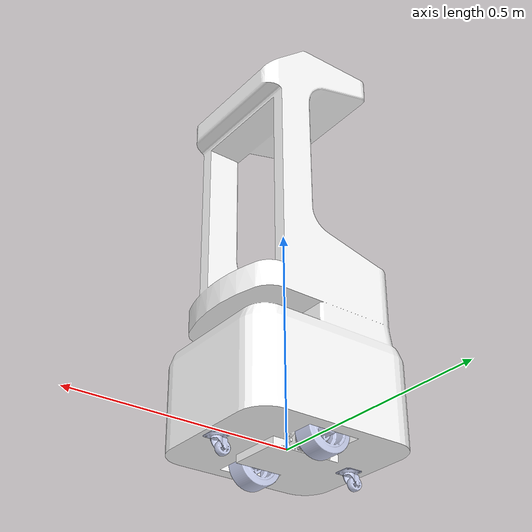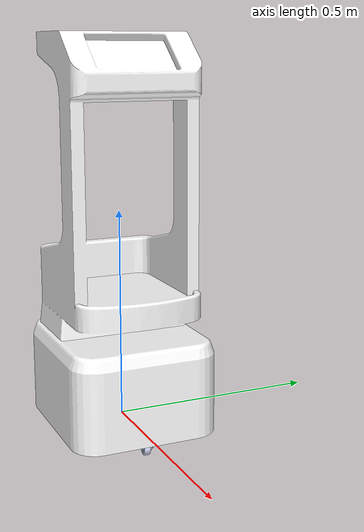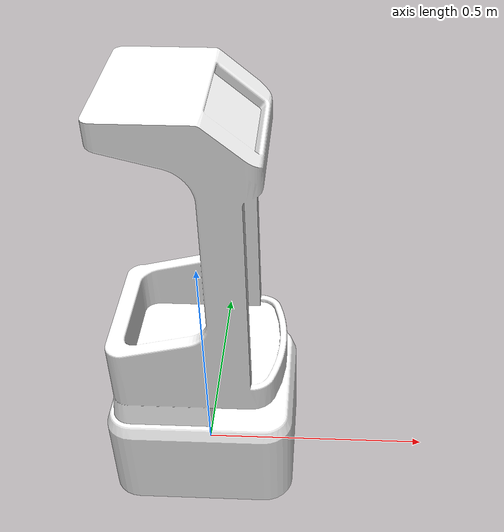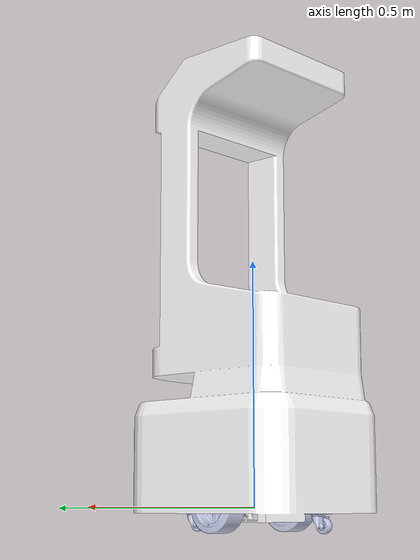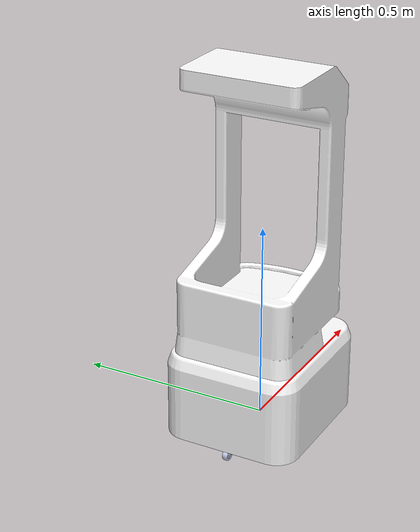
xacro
<?xml version="1.0"?>
<robot name="robot" xmlns:xacro="http://www.ros.org/wiki/xacro">

  <link name="base_link">
    <inertial> <origin xyz="-0.00418261227896211 3.71625062053904E-05 0.371051317313453" rpy="0 0 0" />
      <mass value="31.4198392074961" />
      <inertia ixx="0.534738153716668" ixy="-7.93744571895288E-05" ixz="-0.0005502660745598"  iyy="0.551360325989251" iyz="0.000120146109394871" izz="0.689386206408512" />
    </inertial>
    <visual>
      <origin xyz="0 0 0" rpy="0 0 0" />
      <geometry>
        <mesh filename="file:///home/huuhoa/hospital_robot/src/hospital_package/robot_URDF_hospital/meshes/base_link.STL" />
      </geometry>
      <material
        name="">
        <color rgba="1 1 1 1" />
      </material>
    </visual>
    <collision>
      <origin  xyz="0 0 0" rpy="0 0 0" />
      <geometry>
        <mesh filename="file:///home/huuhoa/hospital_robot/src/hospital_package/robot_URDF_hospital/meshes/base_link.STL" />
      </geometry>
    </collision>
  </link>

  <joint name="base_footprint_joint" type="fixed">
        <parent link="base_link"/>
        <child link="base_footprint"/>
        <origin xyz="0 0 0" rpy="0 0 0"/>
  </joint>

  <link name="base_footprint"></link>

  <link name="wheel_left_link">
    <inertial>
      <origin xyz="-6.05660623209658E-07 0.0309999309948489 -5.78530730085958E-07" rpy="0 0 0" />
      <mass value="0.248448764511887" />
      <inertia ixx="0.000243103249882426"  ixy="2.77650542305426E-10" ixz="2.46488621954328E-09" iyy="0.000389428879628454"  iyz="2.61001466108513E-10" izz="0.000243102824420112" />
    </inertial>
    <visual>
      <origin  xyz="0 0 0"  rpy="0 0 0" />
      <geometry>
        <mesh  filename="file:///home/huuhoa/hospital_robot/src/hospital_package/robot_URDF_hospital/meshes/wheel_left_link.STL" />
      </geometry>
      <material name="">
        <color  rgba="0.792156862745098 0.819607843137255 0.933333333333333 1" />
      </material>
    </visual>
    <collision>
      <origin xyz="0 0 0" rpy="0 0 0" />
      <geometry>
        <mesh  filename="file:///home/huuhoa/hospital_robot/src/hospital_package/robot_URDF_hospital/meshes/wheel_left_link.STL" />
      </geometry>
    </collision>
  </link>

  <joint name="wheel_left_joint" type="fixed">
    <origin xyz="-0.001 0.077499 0.002" rpy="0 0 0" />
    <parent  link="base_link" />
    <child link="wheel_left_link" />
    <axis xyz="0 1 0" />
    <limit
      lower="0"
      upper="0"
      effort="0"
      velocity="0" />
  </joint>

  <link name="wheel_right_link">
    <inertial>
      <origin  xyz="-6.0566062326517E-07 -0.0310000690051511 -5.78530730085958E-07"  rpy="0 0 0" />
      <mass value="0.248448764511887" />
      <inertia ixx="0.000243103249882427" ixy="2.77650542235766E-10" ixz="2.46488621953934E-09" iyy="0.000389428879628454"  iyz="2.61001466170067E-10" izz="0.000243102824420112" />
    </inertial>
    <visual>
      <origin xyz="0 0 0" rpy="0 0 0" />
      <geometry>
        <mesh filename="file:///home/huuhoa/hospital_robot/src/hospital_package/robot_URDF_hospital/meshes/wheel_right_link.STL" />
      </geometry>
      <material name="">
        <color rgba="0.792156862745098 0.819607843137255 0.933333333333333 1" />
      </material>
    </visual>
    <collision>
      <origin xyz="0 0 0" rpy="0 0 0" />
      <geometry>
        <mesh  filename="file:///home/huuhoa/hospital_robot/src/hospital_package/robot_URDF_hospital/meshes/wheel_right_link.STL" />
      </geometry>
    </collision>
  </link>

  <joint name="wheel_right_joint" type="fixed">
    <origin xyz="-0.001 -0.077499 0.002" rpy="0 0 0" />
    <parent link="base_link" />
    <child link="wheel_right_link" />
    <axis xyz="0 1 0" />
    <limit
      lower="0"
      upper="0"
      effort="0"
      velocity="0" />
  </joint>

  <link name="caster_rear_link">
    <inertial>
      <origin xyz="0.158941531779673 0.000110261107710521 -0.0270244838022084" rpy="0 0 0" />
      <mass value="0.0124820530295701" />
      <inertia  ixx="1.06100619956033E-06" ixy="8.12697054265605E-13" ixz="-4.08892427198593E-08" iyy="1.37227214415967E-06" iyz="1.44095123176193E-14" izz="1.35727133515575E-06" />
    </inertial>
    <visual>
      <origin xyz="0 0 0" rpy="0 0 0" />
      <geometry>
        <mesh filename="file:///home/huuhoa/hospital_robot/src/hospital_package/robot_URDF_hospital/meshes/caster_rear_link.STL" />
      </geometry>
      <material name="">
        <color rgba="0.792156862745098 0.819607843137255 0.933333333333333 1" />
      </material>
    </visual>
    <collision>
      <origin  xyz="0 0 0" rpy="0 0 0" />
      <geometry>
        <mesh  filename="file:///home/huuhoa/hospital_robot/src/hospital_package/robot_URDF_hospital/meshes/caster_rear_link.STL" />
      </geometry>
    </collision>
  </link>

  <joint name="caster_rear_joint" type="fixed">
    <origin  xyz="0 0 0" rpy="0 0 0" />
    <parent  link="base_link" />
    <child  link="caster_rear_link" />
    <axis xyz="0 0 0" />
    <limit
      lower="0"
      upper="0"
      effort="0"
      velocity="0" />
  </joint>

  <link name="caster_front_link">
    <inertial>
      <origin xyz="-0.169558468220327 0.000110261107711646 -0.0270244838022084" rpy="0 0 0" />
      <mass value="0.01248205302957" />
      <inertia  ixx="1.06100619956032E-06" ixy="8.12697055359624E-13" ixz="-4.08892427198638E-08" iyy="1.37227214415966E-06"  iyz="1.44095117504443E-14" izz="1.35727133515574E-06" />
    </inertial>
    <visual>
      <origin xyz="0 0 0" rpy="0 0 0" />
      <geometry>
        <mesh filename="file:///home/huuhoa/hospital_robot/src/hospital_package/robot_URDF_hospital/meshes/caster_front_link.STL" />
      </geometry>
      <material name="">
        <color  rgba="0.792156862745098 0.819607843137255 0.933333333333333 1" />
      </material>
    </visual>
    <collision>
      <origin  xyz="0 0 0" rpy="0 0 0" />
      <geometry>
        <mesh filename="file:///home/huuhoa/hospital_robot/src/hospital_package/robot_URDF_hospital/meshes/caster_front_link.STL" />
      </geometry>
    </collision>
  </link>

  <joint name="caster_front_joint" type="fixed">
    <origin xyz="0 0 0" rpy="0 0 0" />
    <parent  link="base_link" />
    <child link="caster_front_link" />
    <axis  xyz="0 0 0" />
    <limit
      lower="0"
      upper="0"
      effort="0"
      velocity="0" />
  </joint>
</robot>
